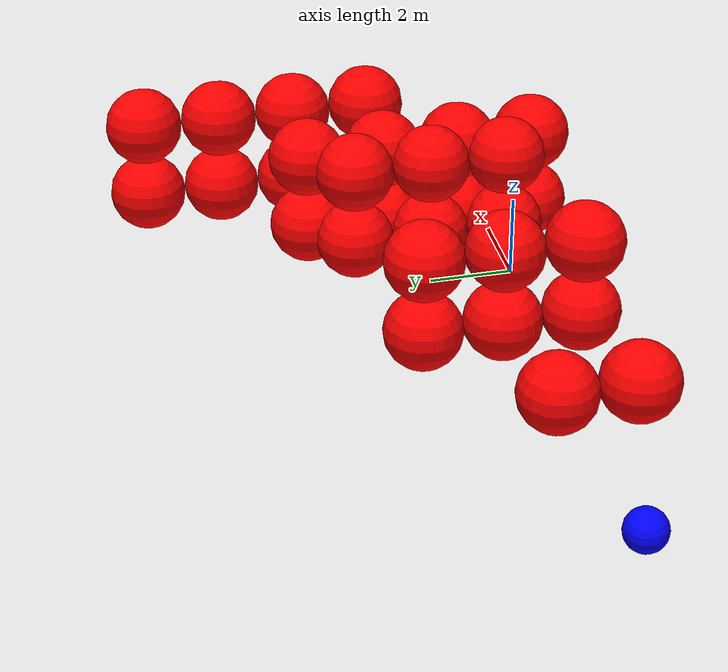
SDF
<?xml version="1.0" ?>
<sdf version="1.8">
    <world name="3d_world">
        <physics name="1ms" type="ode">
            <max_step_size>0.001</max_step_size>
            <real_time_factor>1.0</real_time_factor>
            <real_time_update_rate>1000.0</real_time_update_rate>
        </physics>
        <gravity>0 0 0</gravity>

        <plugin
            filename="gz-sim-physics-system"
            name="gz::sim::v8::systems::Physics">
        </plugin>
        <plugin
            filename="libignition-gazebo-user-commands-system.so"
            name="ignition::gazebo::systems::UserCommands">
        </plugin>
        <plugin
            filename="gz-sim-scene-broadcaster-system"
            name="gz::sim::systems::SceneBroadcaster">
        </plugin>
        <plugin
            filename="gz-sim-sensors-system"
            name="gz::sim::systems::Sensors">
            <render_engine>ogre2</render_engine>
        </plugin>

        <light type="directional" name="sun">
            <cast_shadows>true</cast_shadows>
            <pose>0 0 10 0 0 0</pose>
            <diffuse>0.8 0.8 0.8 1</diffuse>
            <specular>0.2 0.2 0.2 1</specular>
            <attenuation>
                <range>1000</range>
                <constant>0.9</constant>
                <linear>0.01</linear>
                <quadratic>0.001</quadratic>
            </attenuation>
            <direction>-0.5 0.1 -0.9</direction>
        </light>

        <gui fullscreen="0">
            <camera name="user_camera">
                <pose>5.0 0.0 20.0 0.0 1.5708 1.5708</pose>
                <view_controller>orbit</view_controller>
            </camera>
        </gui>

        <!-- AGENTE -->
        <model name='agente' canonical_link='chassis'>
            <pose relative_to='world'>-10.0 0 0.0 0 0 0</pose>
            <link name='chassis'>
                <pose relative_to='__model__'>0.0 0 0.0 0 0 0</pose>
                <inertial>
                    <mass>1.14395</mass>
                    <inertia>
                        <ixx>0.095329</ixx>
                        <ixy>0</ixy>
                        <ixz>0</ixz>
                        <iyy>0.381317</iyy>
                        <iyz>0</iyz>
                        <izz>0.476646</izz>
                    </inertia>
                </inertial>
                <visual name='visual'>
                    <geometry>
                        <sphere>
                            <radius>0.5</radius>
                        </sphere>
                    </geometry>
                    <material>
                        <ambient>0.0 0.0 1.0 1</ambient>
                        <diffuse>0.0 0.0 1.0 1</diffuse>
                        <specular>0.0 0.0 1.0 1</specular>
                    </material>
                </visual>
                <collision name='collision'>
                    <geometry>
                        <sphere>
                            <radius>0.5</radius>
                      <sphere>
                            <radius>0.5</radius>
                        </sphere>  </sphere>
                    </geometry>
                </collision>
                <enable_gravity>false</enable_gravity>
            </link>

            <link name='lidar_link'>
                <pose relative_to='chassis'>0.0 0 0.1 0 0 0</pose>
                <inertial>
                    <mass>0.1</mass>
                    <inertia>
                        <ixx>0.000166667</ixx>
                        <iyy>0.000166667</iyy>
                        <izz>0.000166667</izz>
                    </inertia>
                </inertial>
                <collision name='collision'>
                    <geometry>
                        <cylinder>
                            <radius>0.05</radius>
                            <length>0.1</length>
                        </cylinder>
                    </geometry>
                </collision>
                <visual name='visual'>
                    <geometry>
                        <cylinder>
                            <radius>0.05</radius>
                            <length>0.1</length>
                        </cylinder>
                    </geometry>
                    <material>
                        <ambient>0.0 1.0 0.0 1</ambient>
                        <diffuse>0.0 1.0 0.0 1</diffuse>
                        <specular>0.0 1.0 0.0 1</specular>
                    </material>
                </visual>
                <sensor name="lidar" type="gpu_lidar">
                    <topic>scan</topic>
                    <update_rate>10</update_rate>
                    <lidar>
                        <scan>
                            <horizontal>
                                <samples>5000</samples>
                                <resolution>1</resolution>
                                <min_angle>-3.14159</min_angle>
                                <max_angle>3.14159</max_angle>
                            </horizontal>
                        </scan>
                        <range>
                            <min>0.1</min>
                            <max>10.0</max>
                            <resolution>0.01</resolution>
                        </range>
                    </lidar>
                    <visualize>true</visualize>
                    <always_on>true</always_on>
                    <update_rate>10</update_rate>
                    <pose_frame>lidar</pose_frame>
                </sensor>
                <enable_gravity>false</enable_gravity>
            </link>

            <joint name="lidar_joint" type="fixed">
                <parent>chassis</parent>
                <child>lidar_link</child>
            </joint>

            <plugin
                filename="ignition-gazebo-joint-state-publisher-system"
                name="ignition::gazebo::systems::JointStatePublisher">
            </plugin>
            <plugin
                filename="ignition-gazebo-odometry-publisher-system"
                name="ignition::gazebo::systems::OdometryPublisher">
                <dimensions>3</dimensions>
            </plugin>
            <plugin
                filename="ignition-gazebo-velocity-control-system"
                name="ignition::gazebo::systems::VelocityControl">
                <initial_linear>0.0 0 0</initial_linear>
                <initial_angular>0 0 0.0</initial_angular>
            </plugin>
            <plugin
                filename="libignition-gazebo-pose-publisher-system.so"
                name="ignition::gazebo::systems::PosePublisher">
                <topic>/agente/pose</topic>
                <frame_id>agente</frame_id>
                <update_rate>30</update_rate>
            </plugin>
        </model>

        <!-- OBSTACLE 1 (Cluster 1) -->
        <model name='obstacle_1' canonical_link='obstacle'>
            <static>true</static>
            <pose relative_to='world'>-0.60 -1.68 -1.00 0 0 0</pose>
            <link name='obstacle'>
                <pose relative_to='__model__'>0.0 0 0.0 0 0 0</pose>
                <visual name='visual'>
                    <geometry>
                        <sphere>
                            <radius>1.00</radius>
                        </sphere>
                    </geometry>
                    <material>
                        <ambient>1.0 0.0 0.0 1</ambient>
                        <diffuse>1.0 0.0 0.0 1</diffuse>
                        <specular>1.0 0.0 0.0 1</specular>
                    </material>
                </visual>
                <collision name='collision'>
                    <geometry>
                        <sphere>
                            <radius>1.00</radius>
                        </sphere>
                    </geometry>
                </collision>
                <enable_gravity>false</enable_gravity>
            </link>

            <plugin
                filename="ignition-gazebo-velocity-control-system"
                name="ignition::gazebo::systems::VelocityControl">
                <initial_linear>0.00 0.00 0.00</initial_linear>
                <initial_angular>0 0 0</initial_angular>
            </plugin>

            <plugin
                filename="ignition-gazebo-odometry-publisher-system"
                name="ignition::gazebo::systems::OdometryPublisher">
                <dimensions>3</dimensions>
            </plugin>
        </model>

        <!-- OBSTACLE 2 (Cluster 1) -->
        <model name='obstacle_2' canonical_link='obstacle'>
            <static>true</static>
            <pose relative_to='world'>-0.60 0.32 -1.00 0 0 0</pose>
            <link name='obstacle'>
                <pose relative_to='__model__'>0.0 0 0.0 0 0 0</pose>
                <visual name='visual'>
                    <geometry>
                        <sphere>
                            <radius>1.00</radius>
                        </sphere>
                    </geometry>
                    <material>
                        <ambient>1.0 0.0 0.0 1</ambient>
                        <diffuse>1.0 0.0 0.0 1</diffuse>
                        <specular>1.0 0.0 0.0 1</specular>
                    </material>
                </visual>
                <collision name='collision'>
                    <geometry>
                        <sphere>
                            <radius>1.00</radius>
                        </sphere>
                    </geometry>
                </collision>
                <enable_gravity>false</enable_gravity>
            </link>

            <plugin
                filename="ignition-gazebo-velocity-control-system"
                name="ignition::gazebo::systems::VelocityControl">
                <initial_linear>0.00 0.00 0.00</initial_linear>
                <initial_angular>0 0 0</initial_angular>
            </plugin>

            <plugin
                filename="ignition-gazebo-odometry-publisher-system"
                name="ignition::gazebo::systems::OdometryPublisher">
                <dimensions>3</dimensions>
            </plugin>
        </model>

        <!-- OBSTACLE 3 (Cluster 1) -->
        <model name='obstacle_3' canonical_link='obstacle'>
            <static>true</static>
            <pose relative_to='world'>-0.60 2.32 -1.00 0 0 0</pose>
            <link name='obstacle'>
                <pose relative_to='__model__'>0.0 0 0.0 0 0 0</pose>
                <visual name='visual'>
                    <geometry>
                        <sphere>
                            <radius>1.00</radius>
                        </sphere>
                    </geometry>
                    <material>
                        <ambient>1.0 0.0 0.0 1</ambient>
                        <diffuse>1.0 0.0 0.0 1</diffuse>
                        <specular>1.0 0.0 0.0 1</specular>
                    </material>
                </visual>
                <collision name='collision'>
                    <geometry>
                        <sphere>
                            <radius>1.00</radius>
                        </sphere>
                    </geometry>
                </collision>
                <enable_gravity>false</enable_gravity>
            </link>

            <plugin
                filename="ignition-gazebo-velocity-control-system"
                name="ignition::gazebo::systems::VelocityControl">
                <initial_linear>0.00 0.00 0.00</initial_linear>
                <initial_angular>0 0 0</initial_angular>
            </plugin>

            <plugin
                filename="ignition-gazebo-odometry-publisher-system"
                name="ignition::gazebo::systems::OdometryPublisher">
                <dimensions>3</dimensions>
            </plugin>
        </model>

        <!-- OBSTACLE 4 (Cluster 1) -->
        <model name='obstacle_4' canonical_link='obstacle'>
            <static>true</static>
            <pose relative_to='world'>-0.60 -1.68 1.00 0 0 0</pose>
            <link name='obstacle'>
                <pose relative_to='__model__'>0.0 0 0.0 0 0 0</pose>
                <visual name='visual'>
                    <geometry>
                        <sphere>
                            <radius>1.00</radius>
                        </sphere>
                    </geometry>
                    <material>
                        <ambient>1.0 0.0 0.0 1</ambient>
                        <diffuse>1.0 0.0 0.0 1</diffuse>
                        <specular>1.0 0.0 0.0 1</specular>
                    </material>
                </visual>
                <collision name='collision'>
                    <geometry>
                        <sphere>
                            <radius>1.00</radius>
                        </sphere>
                    </geometry>
                </collision>
                <enable_gravity>false</enable_gravity>
            </link>

            <plugin
                filename="ignition-gazebo-velocity-control-system"
                name="ignition::gazebo::systems::VelocityControl">
                <initial_linear>0.00 0.00 0.00</initial_linear>
                <initial_angular>0 0 0</initial_angular>
            </plugin>

            <plugin
                filename="ignition-gazebo-odometry-publisher-system"
                name="ignition::gazebo::systems::OdometryPublisher">
                <dimensions>3</dimensions>
            </plugin>
        </model>

        <!-- OBSTACLE 5 (Cluster 1) -->
        <model name='obstacle_5' canonical_link='obstacle'>
            <static>true</static>
            <pose relative_to='world'>-0.60 0.32 1.00 0 0 0</pose>
            <link name='obstacle'>
                <pose relative_to='__model__'>0.0 0 0.0 0 0 0</pose>
                <visual name='visual'>
                    <geometry>
                        <sphere>
                            <radius>1.00</radius>
                        </sphere>
                    </geometry>
                    <material>
                        <ambient>1.0 0.0 0.0 1</ambient>
                        <diffuse>1.0 0.0 0.0 1</diffuse>
                        <specular>1.0 0.0 0.0 1</specular>
                    </material>
                </visual>
                <collision name='collision'>
                    <geometry>
                        <sphere>
                            <radius>1.00</radius>
                        </sphere>
                    </geometry>
                </collision>
                <enable_gravity>false</enable_gravity>
            </link>

            <plugin
                filename="ignition-gazebo-velocity-control-system"
                name="ignition::gazebo::systems::VelocityControl">
                <initial_linear>0.00 0.00 0.00</initial_linear>
                <initial_angular>0 0 0</initial_angular>
            </plugin>

            <plugin
                filename="ignition-gazebo-odometry-publisher-system"
                name="ignition::gazebo::systems::OdometryPublisher">
                <dimensions>3</dimensions>
            </plugin>
        </model>

        <!-- OBSTACLE 6 (Cluster 1) -->
        <model name='obstacle_6' canonical_link='obstacle'>
            <static>true</static>
            <pose relative_to='world'>-0.60 2.32 1.00 0 0 0</pose>
            <link name='obstacle'>
                <pose relative_to='__model__'>0.0 0 0.0 0 0 0</pose>
                <visual name='visual'>
                    <geometry>
                        <sphere>
                            <radius>1.00</radius>
                        </sphere>
                    </geometry>
                    <material>
                        <ambient>1.0 0.0 0.0 1</ambient>
                        <diffuse>1.0 0.0 0.0 1</diffuse>
                        <specular>1.0 0.0 0.0 1</specular>
                    </material>
                </visual>
                <collision name='collision'>
                    <geometry>
                        <sphere>
                            <radius>1.00</radius>
                        </sphere>
                    </geometry>
                </collision>
                <enable_gravity>false</enable_gravity>
            </link>

            <plugin
                filename="ignition-gazebo-velocity-control-system"
                name="ignition::gazebo::systems::VelocityControl">
                <initial_linear>0.00 0.00 0.00</initial_linear>
                <initial_angular>0 0 0</initial_angular>
            </plugin>

            <plugin
                filename="ignition-gazebo-odometry-publisher-system"
                name="ignition::gazebo::systems::OdometryPublisher">
                <dimensions>3</dimensions>
            </plugin>
        </model>

        <!-- OBSTACLE 7 (Cluster 2) -->
        <model name='obstacle_7' canonical_link='obstacle'>
            <static>true</static>
            <pose relative_to='world'>4.92 -1.94 -1.00 0 0 0</pose>
            <link name='obstacle'>
                <pose relative_to='__model__'>0.0 0 0.0 0 0 0</pose>
                <visual name='visual'>
                    <geometry>
                        <sphere>
                            <radius>1.00</radius>
                        </sphere>
                    </geometry>
                    <material>
                        <ambient>1.0 0.0 0.0 1</ambient>
                        <diffuse>1.0 0.0 0.0 1</diffuse>
                        <specular>1.0 0.0 0.0 1</specular>
                    </material>
                </visual>
                <collision name='collision'>
                    <geometry>
                        <sphere>
                            <radius>1.00</radius>
                        </sphere>
                    </geometry>
                </collision>
                <enable_gravity>false</enable_gravity>
            </link>

            <plugin
                filename="ignition-gazebo-velocity-control-system"
                name="ignition::gazebo::systems::VelocityControl">
                <initial_linear>0.00 0.00 0.00</initial_linear>
                <initial_angular>0 0 0</initial_angular>
            </plugin>

            <plugin
                filename="ignition-gazebo-odometry-publisher-system"
                name="ignition::gazebo::systems::OdometryPublisher">
                <dimensions>3</dimensions>
            </plugin>
        </model>

        <!-- OBSTACLE 8 (Cluster 2) -->
        <model name='obstacle_8' canonical_link='obstacle'>
            <static>true</static>
            <pose relative_to='world'>4.92 0.06 -1.00 0 0 0</pose>
            <link name='obstacle'>
                <pose relative_to='__model__'>0.0 0 0.0 0 0 0</pose>
                <visual name='visual'>
                    <geometry>
                        <sphere>
                            <radius>1.00</radius>
                        </sphere>
                    </geometry>
                    <material>
                        <ambient>1.0 0.0 0.0 1</ambient>
                        <diffuse>1.0 0.0 0.0 1</diffuse>
                        <specular>1.0 0.0 0.0 1</specular>
                    </material>
                </visual>
                <collision name='collision'>
                    <geometry>
                        <sphere>
                            <radius>1.00</radius>
                        </sphere>
                    </geometry>
                </collision>
                <enable_gravity>false</enable_gravity>
            </link>

            <plugin
                filename="ignition-gazebo-velocity-control-system"
                name="ignition::gazebo::systems::VelocityControl">
                <initial_linear>0.00 0.00 0.00</initial_linear>
                <initial_angular>0 0 0</initial_angular>
            </plugin>

            <plugin
                filename="ignition-gazebo-odometry-publisher-system"
                name="ignition::gazebo::systems::OdometryPublisher">
                <dimensions>3</dimensions>
            </plugin>
        </model>

        <!-- OBSTACLE 9 (Cluster 2) -->
        <model name='obstacle_9' canonical_link='obstacle'>
            <static>true</static>
            <pose relative_to='world'>4.92 2.06 -1.00 0 0 0</pose>
            <link name='obstacle'>
                <pose relative_to='__model__'>0.0 0 0.0 0 0 0</pose>
                <visual name='visual'>
                    <geometry>
                        <sphere>
                            <radius>1.00</radius>
                        </sphere>
                    </geometry>
                    <material>
                        <ambient>1.0 0.0 0.0 1</ambient>
                        <diffuse>1.0 0.0 0.0 1</diffuse>
                        <specular>1.0 0.0 0.0 1</specular>
                    </material>
                </visual>
                <collision name='collision'>
                    <geometry>
                        <sphere>
                            <radius>1.00</radius>
                        </sphere>
                    </geometry>
                </collision>
                <enable_gravity>false</enable_gravity>
            </link>

            <plugin
                filename="ignition-gazebo-velocity-control-system"
                name="ignition::gazebo::systems::VelocityControl">
                <initial_linear>0.00 0.00 0.00</initial_linear>
                <initial_angular>0 0 0</initial_angular>
            </plugin>

            <plugin
                filename="ignition-gazebo-odometry-publisher-system"
                name="ignition::gazebo::systems::OdometryPublisher">
                <dimensions>3</dimensions>
            </plugin>
        </model>

        <!-- OBSTACLE 10 (Cluster 2) -->
        <model name='obstacle_10' canonical_link='obstacle'>
            <static>true</static>
            <pose relative_to='world'>4.92 4.06 -1.00 0 0 0</pose>
            <link name='obstacle'>
                <pose relative_to='__model__'>0.0 0 0.0 0 0 0</pose>
                <visual name='visual'>
                    <geometry>
                        <sphere>
                            <radius>1.00</radius>
                        </sphere>
                    </geometry>
                    <material>
                        <ambient>1.0 0.0 0.0 1</ambient>
                        <diffuse>1.0 0.0 0.0 1</diffuse>
                        <specular>1.0 0.0 0.0 1</specular>
                    </material>
                </visual>
                <collision name='collision'>
                    <geometry>
                        <sphere>
                            <radius>1.00</radius>
                        </sphere>
                    </geometry>
                </collision>
                <enable_gravity>false</enable_gravity>
            </link>

            <plugin
                filename="ignition-gazebo-velocity-control-system"
                name="ignition::gazebo::systems::VelocityControl">
                <initial_linear>0.00 0.00 0.00</initial_linear>
                <initial_angular>0 0 0</initial_angular>
            </plugin>

            <plugin
                filename="ignition-gazebo-odometry-publisher-system"
                name="ignition::gazebo::systems::OdometryPublisher">
                <dimensions>3</dimensions>
            </plugin>
        </model>

        <!-- OBSTACLE 11 (Cluster 2) -->
        <model name='obstacle_11' canonical_link='obstacle'>
            <static>true</static>
            <pose relative_to='world'>4.92 -1.94 1.00 0 0 0</pose>
            <link name='obstacle'>
                <pose relative_to='__model__'>0.0 0 0.0 0 0 0</pose>
                <visual name='visual'>
                    <geometry>
                        <sphere>
                            <radius>1.00</radius>
                        </sphere>
                    </geometry>
                    <material>
                        <ambient>1.0 0.0 0.0 1</ambient>
                        <diffuse>1.0 0.0 0.0 1</diffuse>
                        <specular>1.0 0.0 0.0 1</specular>
                    </material>
                </visual>
                <collision name='collision'>
                    <geometry>
                        <sphere>
                            <radius>1.00</radius>
                        </sphere>
                    </geometry>
                </collision>
                <enable_gravity>false</enable_gravity>
            </link>

            <plugin
                filename="ignition-gazebo-velocity-control-system"
                name="ignition::gazebo::systems::VelocityControl">
                <initial_linear>0.00 0.00 0.00</initial_linear>
                <initial_angular>0 0 0</initial_angular>
            </plugin>

            <plugin
                filename="ignition-gazebo-odometry-publisher-system"
                name="ignition::gazebo::systems::OdometryPublisher">
                <dimensions>3</dimensions>
            </plugin>
        </model>

        <!-- OBSTACLE 12 (Cluster 2) -->
        <model name='obstacle_12' canonical_link='obstacle'>
            <static>true</static>
            <pose relative_to='world'>4.92 0.06 1.00 0 0 0</pose>
            <link name='obstacle'>
                <pose relative_to='__model__'>0.0 0 0.0 0 0 0</pose>
                <visual name='visual'>
                    <geometry>
                        <sphere>
                            <radius>1.00</radius>
                        </sphere>
                    </geometry>
                    <material>
                        <ambient>1.0 0.0 0.0 1</ambient>
                        <diffuse>1.0 0.0 0.0 1</diffuse>
                        <specular>1.0 0.0 0.0 1</specular>
                    </material>
                </visual>
                <collision name='collision'>
                    <geometry>
                        <sphere>
                            <radius>1.00</radius>
                        </sphere>
                    </geometry>
                </collision>
                <enable_gravity>false</enable_gravity>
            </link>

            <plugin
                filename="ignition-gazebo-velocity-control-system"
                name="ignition::gazebo::systems::VelocityControl">
                <initial_linear>0.00 0.00 0.00</initial_linear>
                <initial_angular>0 0 0</initial_angular>
            </plugin>

            <plugin
                filename="ignition-gazebo-odometry-publisher-system"
                name="ignition::gazebo::systems::OdometryPublisher">
                <dimensions>3</dimensions>
            </plugin>
        </model>

        <!-- OBSTACLE 13 (Cluster 2) -->
        <model name='obstacle_13' canonical_link='obstacle'>
            <static>true</static>
            <pose relative_to='world'>4.92 2.06 1.00 0 0 0</pose>
            <link name='obstacle'>
                <pose relative_to='__model__'>0.0 0 0.0 0 0 0</pose>
                <visual name='visual'>
                    <geometry>
                        <sphere>
                            <radius>1.00</radius>
                        </sphere>
                    </geometry>
                    <material>
                        <ambient>1.0 0.0 0.0 1</ambient>
                        <diffuse>1.0 0.0 0.0 1</diffuse>
                        <specular>1.0 0.0 0.0 1</specular>
                    </material>
                </visual>
                <collision name='collision'>
                    <geometry>
                        <sphere>
                            <radius>1.00</radius>
                        </sphere>
                    </geometry>
                </collision>
                <enable_gravity>false</enable_gravity>
            </link>

            <plugin
                filename="ignition-gazebo-velocity-control-system"
                name="ignition::gazebo::systems::VelocityControl">
                <initial_linear>0.00 0.00 0.00</initial_linear>
                <initial_angular>0 0 0</initial_angular>
            </plugin>

            <plugin
                filename="ignition-gazebo-odometry-publisher-system"
                name="ignition::gazebo::systems::OdometryPublisher">
                <dimensions>3</dimensions>
            </plugin>
        </model>

        <!-- OBSTACLE 14 (Cluster 2) -->
        <model name='obstacle_14' canonical_link='obstacle'>
            <static>true</static>
            <pose relative_to='world'>4.92 4.06 1.00 0 0 0</pose>
            <link name='obstacle'>
                <pose relative_to='__model__'>0.0 0 0.0 0 0 0</pose>
                <visual name='visual'>
                    <geometry>
                        <sphere>
                            <radius>1.00</radius>
                        </sphere>
                    </geometry>
                    <material>
                        <ambient>1.0 0.0 0.0 1</ambient>
                        <diffuse>1.0 0.0 0.0 1</diffuse>
                        <specular>1.0 0.0 0.0 1</specular>
                    </material>
                </visual>
                <collision name='collision'>
                    <geometry>
                        <sphere>
                            <radius>1.00</radius>
                        </sphere>
                    </geometry>
                </collision>
                <enable_gravity>false</enable_gravity>
            </link>

            <plugin
                filename="ignition-gazebo-velocity-control-system"
                name="ignition::gazebo::systems::VelocityControl">
                <initial_linear>0.00 0.00 0.00</initial_linear>
                <initial_angular>0 0 0</initial_angular>
            </plugin>

            <plugin
                filename="ignition-gazebo-odometry-publisher-system"
                name="ignition::gazebo::systems::OdometryPublisher">
                <dimensions>3</dimensions>
            </plugin>
        </model>

        <!-- OBSTACLE 15 (Cluster 3) -->
        <model name='obstacle_15' canonical_link='obstacle'>
            <static>true</static>
            <pose relative_to='world'>3.87 -0.97 -1.00 0 0 0</pose>
            <link name='obstacle'>
                <pose relative_to='__model__'>0.0 0 0.0 0 0 0</pose>
                <visual name='visual'>
                    <geometry>
                        <sphere>
                            <radius>1.00</radius>
                        </sphere>
                    </geometry>
                    <material>
                        <ambient>1.0 0.0 0.0 1</ambient>
                        <diffuse>1.0 0.0 0.0 1</diffuse>
                        <specular>1.0 0.0 0.0 1</specular>
                    </material>
                </visual>
                <collision name='collision'>
                    <geometry>
                        <sphere>
                            <radius>1.00</radius>
                        </sphere>
                    </geometry>
                </collision>
                <enable_gravity>false</enable_gravity>
            </link>

            <plugin
                filename="ignition-gazebo-velocity-control-system"
                name="ignition::gazebo::systems::VelocityControl">
                <initial_linear>0.00 0.00 0.00</initial_linear>
                <initial_angular>0 0 0</initial_angular>
            </plugin>

            <plugin
                filename="ignition-gazebo-odometry-publisher-system"
                name="ignition::gazebo::systems::OdometryPublisher">
                <dimensions>3</dimensions>
            </plugin>
        </model>

        <!-- OBSTACLE 16 (Cluster 3) -->
        <model name='obstacle_16' canonical_link='obstacle'>
            <static>true</static>
            <pose relative_to='world'>3.87 1.03 -1.00 0 0 0</pose>
            <link name='obstacle'>
                <pose relative_to='__model__'>0.0 0 0.0 0 0 0</pose>
                <visual name='visual'>
                    <geometry>
                        <sphere>
                            <radius>1.00</radius>
                        </sphere>
                    </geometry>
                    <material>
                        <ambient>1.0 0.0 0.0 1</ambient>
                        <diffuse>1.0 0.0 0.0 1</diffuse>
                        <specular>1.0 0.0 0.0 1</specular>
                    </material>
                </visual>
                <collision name='collision'>
                    <geometry>
                        <sphere>
                            <radius>1.00</radius>
                        </sphere>
                    </geometry>
                </collision>
                <enable_gravity>false</enable_gravity>
            </link>

            <plugin
                filename="ignition-gazebo-velocity-control-system"
                name="ignition::gazebo::systems::VelocityControl">
                <initial_linear>0.00 0.00 0.00</initial_linear>
                <initial_angular>0 0 0</initial_angular>
            </plugin>

            <plugin
                filename="ignition-gazebo-odometry-publisher-system"
                name="ignition::gazebo::systems::OdometryPublisher">
                <dimensions>3</dimensions>
            </plugin>
        </model>

        <!-- OBSTACLE 17 (Cluster 3) -->
        <model name='obstacle_17' canonical_link='obstacle'>
            <static>true</static>
            <pose relative_to='world'>3.87 3.03 -1.00 0 0 0</pose>
            <link name='obstacle'>
                <pose relative_to='__model__'>0.0 0 0.0 0 0 0</pose>
                <visual name='visual'>
                    <geometry>
                        <sphere>
                            <radius>1.00</radius>
                        </sphere>
                    </geometry>
                    <material>
                        <ambient>1.0 0.0 0.0 1</ambient>
                        <diffuse>1.0 0.0 0.0 1</diffuse>
                        <specular>1.0 0.0 0.0 1</specular>
                    </material>
                </visual>
                <collision name='collision'>
                    <geometry>
                        <sphere>
                            <radius>1.00</radius>
                        </sphere>
                    </geometry>
                </collision>
                <enable_gravity>false</enable_gravity>
            </link>

            <plugin
                filename="ignition-gazebo-velocity-control-system"
                name="ignition::gazebo::systems::VelocityControl">
                <initial_linear>0.00 0.00 0.00</initial_linear>
                <initial_angular>0 0 0</initial_angular>
            </plugin>

            <plugin
                filename="ignition-gazebo-odometry-publisher-system"
                name="ignition::gazebo::systems::OdometryPublisher">
                <dimensions>3</dimensions>
            </plugin>
        </model>

        <!-- OBSTACLE 18 (Cluster 3) -->
        <model name='obstacle_18' canonical_link='obstacle'>
            <static>true</static>
            <pose relative_to='world'>3.87 -0.97 1.00 0 0 0</pose>
            <link name='obstacle'>
                <pose relative_to='__model__'>0.0 0 0.0 0 0 0</pose>
                <visual name='visual'>
                    <geometry>
                        <sphere>
                            <radius>1.00</radius>
                        </sphere>
                    </geometry>
                    <material>
                        <ambient>1.0 0.0 0.0 1</ambient>
                        <diffuse>1.0 0.0 0.0 1</diffuse>
                        <specular>1.0 0.0 0.0 1</specular>
                    </material>
                </visual>
                <collision name='collision'>
                    <geometry>
                        <sphere>
                            <radius>1.00</radius>
                        </sphere>
                    </geometry>
                </collision>
                <enable_gravity>false</enable_gravity>
            </link>

            <plugin
                filename="ignition-gazebo-velocity-control-system"
                name="ignition::gazebo::systems::VelocityControl">
                <initial_linear>0.00 0.00 0.00</initial_linear>
                <initial_angular>0 0 0</initial_angular>
            </plugin>

            <plugin
                filename="ignition-gazebo-odometry-publisher-system"
                name="ignition::gazebo::systems::OdometryPublisher">
                <dimensions>3</dimensions>
            </plugin>
        </model>

        <!-- OBSTACLE 19 (Cluster 3) -->
        <model name='obstacle_19' canonical_link='obstacle'>
            <static>true</static>
            <pose relative_to='world'>3.87 1.03 1.00 0 0 0</pose>
            <link name='obstacle'>
                <pose relative_to='__model__'>0.0 0 0.0 0 0 0</pose>
                <visual name='visual'>
                    <geometry>
                        <sphere>
                            <radius>1.00</radius>
                        </sphere>
                    </geometry>
                    <material>
                        <ambient>1.0 0.0 0.0 1</ambient>
                        <diffuse>1.0 0.0 0.0 1</diffuse>
                        <specular>1.0 0.0 0.0 1</specular>
                    </material>
                </visual>
                <collision name='collision'>
                    <geometry>
                        <sphere>
                            <radius>1.00</radius>
                        </sphere>
                    </geometry>
                </collision>
                <enable_gravity>false</enable_gravity>
            </link>

            <plugin
                filename="ignition-gazebo-velocity-control-system"
                name="ignition::gazebo::systems::VelocityControl">
                <initial_linear>0.00 0.00 0.00</initial_linear>
                <initial_angular>0 0 0</initial_angular>
            </plugin>

            <plugin
                filename="ignition-gazebo-odometry-publisher-system"
                name="ignition::gazebo::systems::OdometryPublisher">
                <dimensions>3</dimensions>
            </plugin>
        </model>

        <!-- OBSTACLE 20 (Cluster 3) -->
        <model name='obstacle_20' canonical_link='obstacle'>
            <static>true</static>
            <pose relative_to='world'>3.87 3.03 1.00 0 0 0</pose>
            <link name='obstacle'>
                <pose relative_to='__model__'>0.0 0 0.0 0 0 0</pose>
                <visual name='visual'>
                    <geometry>
                        <sphere>
                            <radius>1.00</radius>
                        </sphere>
                    </geometry>
                    <material>
                        <ambient>1.0 0.0 0.0 1</ambient>
                        <diffuse>1.0 0.0 0.0 1</diffuse>
                        <specular>1.0 0.0 0.0 1</specular>
                    </material>
                </visual>
                <collision name='collision'>
                    <geometry>
                        <sphere>
                            <radius>1.00</radius>
                        </sphere>
                    </geometry>
                </collision>
                <enable_gravity>false</enable_gravity>
            </link>

            <plugin
                filename="ignition-gazebo-velocity-control-system"
                name="ignition::gazebo::systems::VelocityControl">
                <initial_linear>0.00 0.00 0.00</initial_linear>
                <initial_angular>0 0 0</initial_angular>
            </plugin>

            <plugin
                filename="ignition-gazebo-odometry-publisher-system"
                name="ignition::gazebo::systems::OdometryPublisher">
                <dimensions>3</dimensions>
            </plugin>
        </model>

        <!-- OBSTACLE 21 (Cluster 4) -->
        <model name='obstacle_21' canonical_link='obstacle'>
            <static>true</static>
            <pose relative_to='world'>7.49 1.95 -1.00 0 0 0</pose>
            <link name='obstacle'>
                <pose relative_to='__model__'>0.0 0 0.0 0 0 0</pose>
                <visual name='visual'>
                    <geometry>
                        <sphere>
                            <radius>1.00</radius>
                        </sphere>
                    </geometry>
                    <material>
                        <ambient>1.0 0.0 0.0 1</ambient>
                        <diffuse>1.0 0.0 0.0 1</diffuse>
                        <specular>1.0 0.0 0.0 1</specular>
                    </material>
                </visual>
                <collision name='collision'>
                    <geometry>
                        <sphere>
                            <radius>1.00</radius>
                        </sphere>
                    </geometry>
                </collision>
                <enable_gravity>false</enable_gravity>
            </link>

            <plugin
                filename="ignition-gazebo-velocity-control-system"
                name="ignition::gazebo::systems::VelocityControl">
                <initial_linear>0.00 0.00 0.00</initial_linear>
                <initial_angular>0 0 0</initial_angular>
            </plugin>

            <plugin
                filename="ignition-gazebo-odometry-publisher-system"
                name="ignition::gazebo::systems::OdometryPublisher">
                <dimensions>3</dimensions>
            </plugin>
        </model>

        <!-- OBSTACLE 22 (Cluster 4) -->
        <model name='obstacle_22' canonical_link='obstacle'>
            <static>true</static>
            <pose relative_to='world'>7.49 3.95 -1.00 0 0 0</pose>
            <link name='obstacle'>
                <pose relative_to='__model__'>0.0 0 0.0 0 0 0</pose>
                <visual name='visual'>
                    <geometry>
                        <sphere>
                            <radius>1.00</radius>
                        </sphere>
                    </geometry>
                    <material>
                        <ambient>1.0 0.0 0.0 1</ambient>
                        <diffuse>1.0 0.0 0.0 1</diffuse>
                        <specular>1.0 0.0 0.0 1</specular>
                    </material>
                </visual>
                <collision name='collision'>
                    <geometry>
                        <sphere>
                            <radius>1.00</radius>
                        </sphere>
                    </geometry>
                </collision>
                <enable_gravity>false</enable_gravity>
            </link>

            <plugin
                filename="ignition-gazebo-velocity-control-system"
                name="ignition::gazebo::systems::VelocityControl">
                <initial_linear>0.00 0.00 0.00</initial_linear>
                <initial_angular>0 0 0</initial_angular>
            </plugin>

            <plugin
                filename="ignition-gazebo-odometry-publisher-system"
                name="ignition::gazebo::systems::OdometryPublisher">
                <dimensions>3</dimensions>
            </plugin>
        </model>

        <!-- OBSTACLE 23 (Cluster 4) -->
        <model name='obstacle_23' canonical_link='obstacle'>
            <static>true</static>
            <pose relative_to='world'>7.49 5.95 -1.00 0 0 0</pose>
            <link name='obstacle'>
                <pose relative_to='__model__'>0.0 0 0.0 0 0 0</pose>
                <visual name='visual'>
                    <geometry>
                        <sphere>
                            <radius>1.00</radius>
                        </sphere>
                    </geometry>
                    <material>
                        <ambient>1.0 0.0 0.0 1</ambient>
                        <diffuse>1.0 0.0 0.0 1</diffuse>
                        <specular>1.0 0.0 0.0 1</specular>
                    </material>
                </visual>
                <collision name='collision'>
                    <geometry>
                        <sphere>
                            <radius>1.00</radius>
                        </sphere>
                    </geometry>
                </collision>
                <enable_gravity>false</enable_gravity>
            </link>

            <plugin
                filename="ignition-gazebo-velocity-control-system"
                name="ignition::gazebo::systems::VelocityControl">
                <initial_linear>0.00 0.00 0.00</initial_linear>
                <initial_angular>0 0 0</initial_angular>
            </plugin>

            <plugin
                filename="ignition-gazebo-odometry-publisher-system"
                name="ignition::gazebo::systems::OdometryPublisher">
                <dimensions>3</dimensions>
            </plugin>
        </model>

        <!-- OBSTACLE 24 (Cluster 4) -->
        <model name='obstacle_24' canonical_link='obstacle'>
            <static>true</static>
            <pose relative_to='world'>7.49 7.95 -1.00 0 0 0</pose>
            <link name='obstacle'>
                <pose relative_to='__model__'>0.0 0 0.0 0 0 0</pose>
                <visual name='visual'>
                    <geometry>
                        <sphere>
                            <radius>1.00</radius>
                        </sphere>
                    </geometry>
                    <material>
                        <ambient>1.0 0.0 0.0 1</ambient>
                        <diffuse>1.0 0.0 0.0 1</diffuse>
                        <specular>1.0 0.0 0.0 1</specular>
                    </material>
                </visual>
                <collision name='collision'>
                    <geometry>
                        <sphere>
                            <radius>1.00</radius>
                        </sphere>
                    </geometry>
                </collision>
                <enable_gravity>false</enable_gravity>
            </link>

            <plugin
                filename="ignition-gazebo-velocity-control-system"
                name="ignition::gazebo::systems::VelocityControl">
                <initial_linear>0.00 0.00 0.00</initial_linear>
                <initial_angular>0 0 0</initial_angular>
            </plugin>

            <plugin
                filename="ignition-gazebo-odometry-publisher-system"
                name="ignition::gazebo::systems::OdometryPublisher">
                <dimensions>3</dimensions>
            </plugin>
        </model>

        <!-- OBSTACLE 25 (Cluster 4) -->
        <model name='obstacle_25' canonical_link='obstacle'>
            <static>true</static>
            <pose relative_to='world'>7.49 1.95 1.00 0 0 0</pose>
            <link name='obstacle'>
                <pose relative_to='__model__'>0.0 0 0.0 0 0 0</pose>
                <visual name='visual'>
                    <geometry>
                        <sphere>
                            <radius>1.00</radius>
                        </sphere>
                    </geometry>
                    <material>
                        <ambient>1.0 0.0 0.0 1</ambient>
                        <diffuse>1.0 0.0 0.0 1</diffuse>
                        <specular>1.0 0.0 0.0 1</specular>
                    </material>
                </visual>
                <collision name='collision'>
                    <geometry>
                        <sphere>
                            <radius>1.00</radius>
                        </sphere>
                    </geometry>
                </collision>
                <enable_gravity>false</enable_gravity>
            </link>

            <plugin
                filename="ignition-gazebo-velocity-control-system"
                name="ignition::gazebo::systems::VelocityControl">
                <initial_linear>0.00 0.00 0.00</initial_linear>
                <initial_angular>0 0 0</initial_angular>
            </plugin>

            <plugin
                filename="ignition-gazebo-odometry-publisher-system"
                name="ignition::gazebo::systems::OdometryPublisher">
                <dimensions>3</dimensions>
            </plugin>
        </model>

        <!-- OBSTACLE 26 (Cluster 4) -->
        <model name='obstacle_26' canonical_link='obstacle'>
            <static>true</static>
            <pose relative_to='world'>7.49 3.95 1.00 0 0 0</pose>
            <link name='obstacle'>
                <pose relative_to='__model__'>0.0 0 0.0 0 0 0</pose>
                <visual name='visual'>
                    <geometry>
                        <sphere>
                            <radius>1.00</radius>
                        </sphere>
                    </geometry>
                    <material>
                        <ambient>1.0 0.0 0.0 1</ambient>
                        <diffuse>1.0 0.0 0.0 1</diffuse>
                        <specular>1.0 0.0 0.0 1</specular>
                    </material>
                </visual>
                <collision name='collision'>
                    <geometry>
                        <sphere>
                            <radius>1.00</radius>
                        </sphere>
                    </geometry>
                </collision>
                <enable_gravity>false</enable_gravity>
            </link>

            <plugin
                filename="ignition-gazebo-velocity-control-system"
                name="ignition::gazebo::systems::VelocityControl">
                <initial_linear>0.00 0.00 0.00</initial_linear>
                <initial_angular>0 0 0</initial_angular>
            </plugin>

            <plugin
                filename="ignition-gazebo-odometry-publisher-system"
                name="ignition::gazebo::systems::OdometryPublisher">
                <dimensions>3</dimensions>
            </plugin>
        </model>

        <!-- OBSTACLE 27 (Cluster 4) -->
        <model name='obstacle_27' canonical_link='obstacle'>
            <static>true</static>
            <pose relative_to='world'>7.49 5.95 1.00 0 0 0</pose>
            <link name='obstacle'>
                <pose relative_to='__model__'>0.0 0 0.0 0 0 0</pose>
                <visual name='visual'>
                    <geometry>
                        <sphere>
                            <radius>1.00</radius>
                        </sphere>
                    </geometry>
                    <material>
                        <ambient>1.0 0.0 0.0 1</ambient>
                        <diffuse>1.0 0.0 0.0 1</diffuse>
                        <specular>1.0 0.0 0.0 1</specular>
                    </material>
                </visual>
                <collision name='collision'>
                    <geometry>
                        <sphere>
                            <radius>1.00</radius>
                        </sphere>
                    </geometry>
                </collision>
                <enable_gravity>false</enable_gravity>
            </link>

            <plugin
                filename="ignition-gazebo-velocity-control-system"
                name="ignition::gazebo::systems::VelocityControl">
                <initial_linear>0.00 0.00 0.00</initial_linear>
                <initial_angular>0 0 0</initial_angular>
            </plugin>

            <plugin
                filename="ignition-gazebo-odometry-publisher-system"
                name="ignition::gazebo::systems::OdometryPublisher">
                <dimensions>3</dimensions>
            </plugin>
        </model>

        <!-- OBSTACLE 28 (Cluster 4) -->
        <model name='obstacle_28' canonical_link='obstacle'>
            <static>true</static>
            <pose relative_to='world'>7.49 7.95 1.00 0 0 0</pose>
            <link name='obstacle'>
                <pose relative_to='__model__'>0.0 0 0.0 0 0 0</pose>
                <visual name='visual'>
                    <geometry>
                        <sphere>
                            <radius>1.00</radius>
                        </sphere>
                    </geometry>
                    <material>
                        <ambient>1.0 0.0 0.0 1</ambient>
                        <diffuse>1.0 0.0 0.0 1</diffuse>
                        <specular>1.0 0.0 0.0 1</specular>
                    </material>
                </visual>
                <collision name='collision'>
                    <geometry>
                        <sphere>
                            <radius>1.00</radius>
                        </sphere>
                    </geometry>
                </collision>
                <enable_gravity>false</enable_gravity>
            </link>

            <plugin
                filename="ignition-gazebo-velocity-control-system"
                name="ignition::gazebo::systems::VelocityControl">
                <initial_linear>0.00 0.00 0.00</initial_linear>
                <initial_angular>0 0 0</initial_angular>
            </plugin>

            <plugin
                filename="ignition-gazebo-odometry-publisher-system"
                name="ignition::gazebo::systems::OdometryPublisher">
                <dimensions>3</dimensions>
            </plugin>
        </model>

        <!-- OBSTACLE 29 (Cluster 5) -->
        <model name='obstacle_29' canonical_link='obstacle'>
            <static>false</static>
            <pose relative_to='world'>-4.07 -2.00 -0.77 0 0 0</pose>
            <link name='obstacle'>
                <pose relative_to='__model__'>0.0 0 0.0 0 0 0</pose>
                <visual name='visual'>
                    <geometry>
                        <sphere>
                            <radius>1.00</radius>
                        </sphere>
                    </geometry>
                    <material>
                        <ambient>1.0 0.0 0.0 1</ambient>
                        <diffuse>1.0 0.0 0.0 1</diffuse>
                        <specular>1.0 0.0 0.0 1</specular>
                    </material>
                </visual>
                <collision name='collision'>
                    <geometry>
                        <sphere>
                            <radius>1.00</radius>
                        </sphere>
                    </geometry>
                </collision>
                <enable_gravity>false</enable_gravity>
            </link>

            <plugin
                filename="ignition-gazebo-velocity-control-system"
                name="ignition::gazebo::systems::VelocityControl">
                <initial_linear>0.00 0.69 0.58</initial_linear>
                <initial_angular>0 0 0</initial_angular>
            </plugin>

            <plugin
                filename="ignition-gazebo-odometry-publisher-system"
                name="ignition::gazebo::systems::OdometryPublisher">
                <dimensions>3</dimensions>
            </plugin>
        </model>

        <!-- OBSTACLE 30 (Cluster 5) -->
        <model name='obstacle_30' canonical_link='obstacle'>
            <static>false</static>
            <pose relative_to='world'>-4.07 0.00 -0.77 0 0 0</pose>
            <link name='obstacle'>
                <pose relative_to='__model__'>0.0 0 0.0 0 0 0</pose>
                <visual name='visual'>
                    <geometry>
                        <sphere>
                            <radius>1.00</radius>
                        </sphere>
                    </geometry>
                    <material>
                        <ambient>1.0 0.0 0.0 1</ambient>
                        <diffuse>1.0 0.0 0.0 1</diffuse>
                        <specular>1.0 0.0 0.0 1</specular>
                    </material>
                </visual>
                <collision name='collision'>
                    <geometry>
                        <sphere>
                            <radius>1.00</radius>
                        </sphere>
                    </geometry>
                </collision>
                <enable_gravity>false</enable_gravity>
            </link>

            <plugin
                filename="ignition-gazebo-velocity-control-system"
                name="ignition::gazebo::systems::VelocityControl">
                <initial_linear>0.00 0.69 0.58</initial_linear>
                <initial_angular>0 0 0</initial_angular>
            </plugin>

            <plugin
                filename="ignition-gazebo-odometry-publisher-system"
                name="ignition::gazebo::systems::OdometryPublisher">
                <dimensions>3</dimensions>
            </plugin>
        </model>

    </world>
</sdf>
